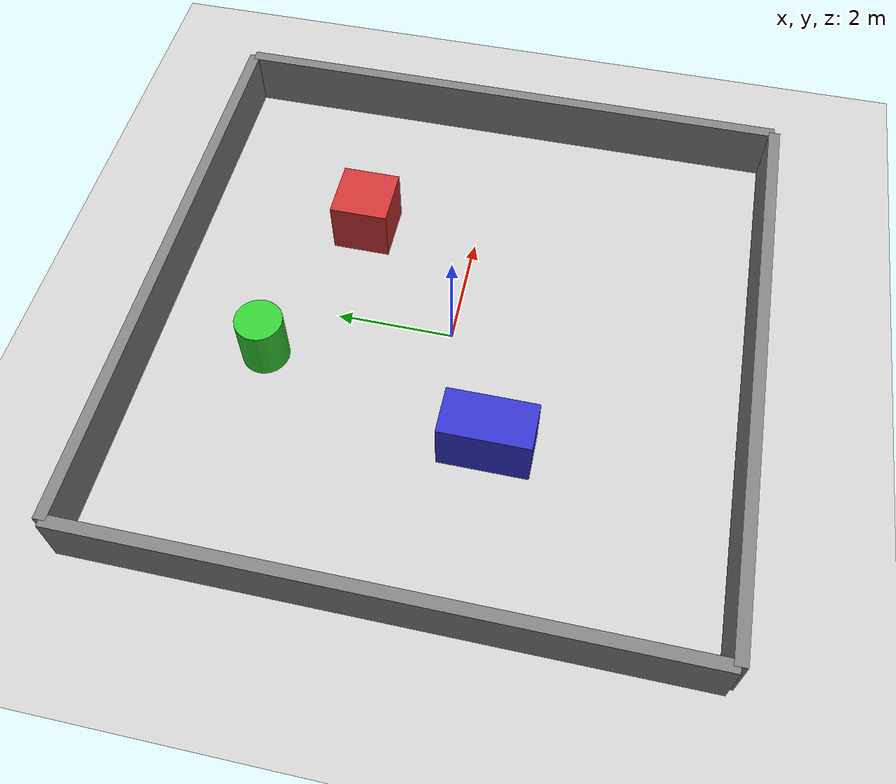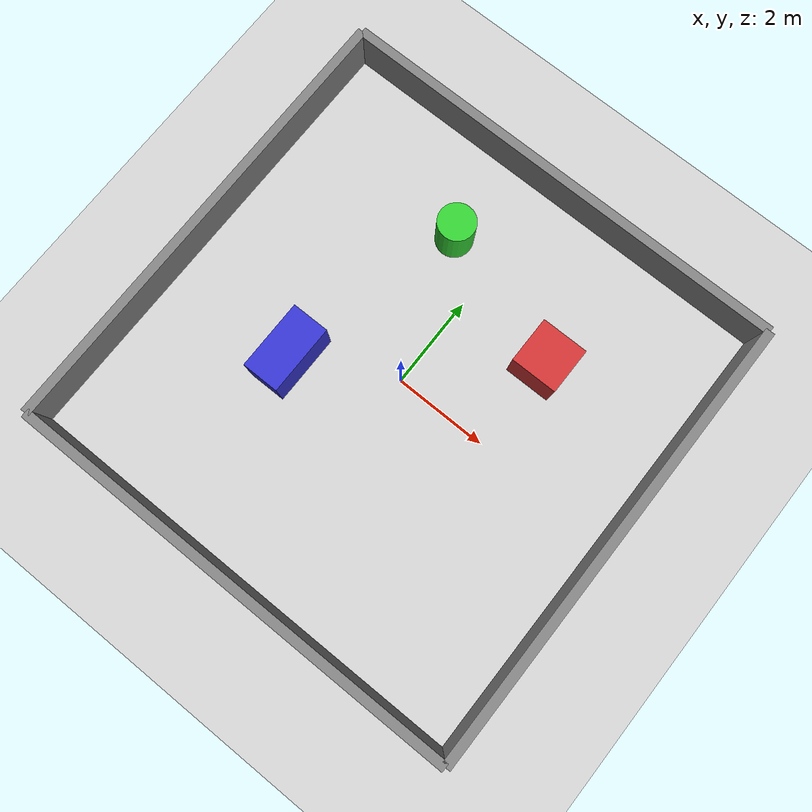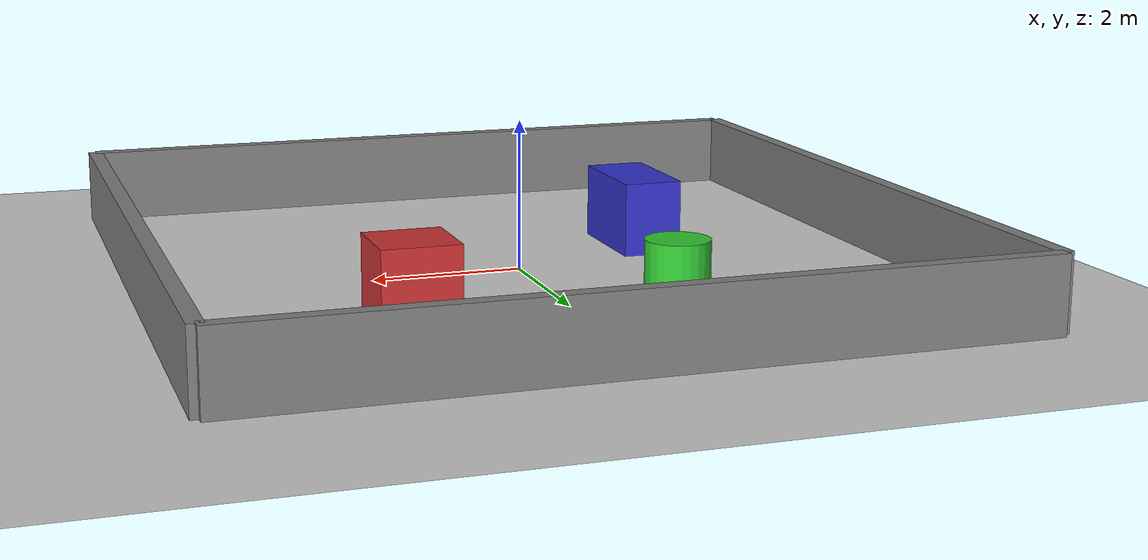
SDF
<?xml version="1.0"?>

<sdf version="1.9">
  <world name="nav_world">

    <physics name="4ms" type="dart">
      <max_step_size>0.004</max_step_size>
      <real_time_factor>1.0</real_time_factor>
    </physics>

    <!-- System plugins -->
    <plugin filename="gz-sim-physics-system" name="gz::sim::systems::Physics"/>
    <plugin filename="gz-sim-user-commands-system" name="gz::sim::systems::UserCommands"/>
    <plugin filename="gz-sim-scene-broadcaster-system" name="gz::sim::systems::SceneBroadcaster"/>
    <plugin filename="gz-sim-contact-system" name="gz::sim::systems::Contact"/>

    <!-- CRITICAL: Sensors system – required for gpu_lidar, imu, camera, etc. -->
    <plugin filename="gz-sim-sensors-system" name="gz::sim::systems::Sensors">
      <render_engine>ogre2</render_engine>
    </plugin>

    <!-- IMU system -->
    <plugin filename="gz-sim-imu-system" name="gz::sim::systems::Imu"/>

    <!-- Lighting -->
    <light type="directional" name="sun">
      <cast_shadows>false</cast_shadows>
      <pose>0 0 10 0 0 0</pose>
      <diffuse>0.8 0.8 0.8 1</diffuse>
      <specular>0.2 0.2 0.2 1</specular>
      <attenuation>
        <range>1000</range>
        <constant>0.9</constant>
        <linear>0.01</linear>
        <quadratic>0.001</quadratic>
      </attenuation>
      <direction>-0.5 0.1 -0.9</direction>
    </light>

    <!-- Ground plane -->
    <model name="ground_plane">
      <static>true</static>
      <link name="link">
        <collision name="collision">
          <geometry>
            <plane>
              <normal>0 0 1</normal>
              <size>100 100</size>
            </plane>
          </geometry>
          <surface>
            <friction>
              <ode>
                <mu>100</mu>
                <mu2>50</mu2>
              </ode>
            </friction>
            <bounce>
              <restitution_coefficient>0.0</restitution_coefficient>
              <threshold>1e6</threshold>
            </bounce>
            <contact>
              <ode>
                <soft_cfm>0</soft_cfm>
                <soft_erp>0.2</soft_erp>
              </ode>
            </contact>
          </surface>
        </collision>
        <visual name="visual">
          <geometry>
            <plane>
              <normal>0 0 1</normal>
              <size>100 100</size>
            </plane>
          </geometry>
          <material>
            <ambient>0.8 0.8 0.8 1</ambient>
            <diffuse>0.8 0.8 0.8 1</diffuse>
            <specular>0.8 0.8 0.8 1</specular>
          </material>
        </visual>
      </link>
    </model>

    <!-- Some walls for the LiDAR to detect (simple obstacle room) -->
    <model name="wall_north">
      <static>true</static>
      <pose>0 5 0.5 0 0 0</pose>
      <link name="link">
        <collision name="collision">
          <geometry><box><size>10 0.2 1</size></box></geometry>
        </collision>
        <visual name="visual">
          <geometry><box><size>10 0.2 1</size></box></geometry>
          <material><ambient>0.5 0.5 0.5 1</ambient><diffuse>0.5 0.5 0.5 1</diffuse></material>
        </visual>
      </link>
    </model>

    <model name="wall_south">
      <static>true</static>
      <pose>0 -5 0.5 0 0 0</pose>
      <link name="link">
        <collision name="collision">
          <geometry><box><size>10 0.2 1</size></box></geometry>
        </collision>
        <visual name="visual">
          <geometry><box><size>10 0.2 1</size></box></geometry>
          <material><ambient>0.5 0.5 0.5 1</ambient><diffuse>0.5 0.5 0.5 1</diffuse></material>
        </visual>
      </link>
    </model>

    <model name="wall_east">
      <static>true</static>
      <pose>5 0 0.5 0 0 0</pose>
      <link name="link">
        <collision name="collision">
          <geometry><box><size>0.2 10 1</size></box></geometry>
        </collision>
        <visual name="visual">
          <geometry><box><size>0.2 10 1</size></box></geometry>
          <material><ambient>0.5 0.5 0.5 1</ambient><diffuse>0.5 0.5 0.5 1</diffuse></material>
        </visual>
      </link>
    </model>

    <model name="wall_west">
      <static>true</static>
      <pose>-5 0 0.5 0 0 0</pose>
      <link name="link">
        <collision name="collision">
          <geometry><box><size>0.2 10 1</size></box></geometry>
        </collision>
        <visual name="visual">
          <geometry><box><size>0.2 10 1</size></box></geometry>
          <material><ambient>0.5 0.5 0.5 1</ambient><diffuse>0.5 0.5 0.5 1</diffuse></material>
        </visual>
      </link>
    </model>

    <!-- A few obstacles inside the room -->
    <model name="box1">
      <static>true</static>
      <pose>2 2 0.5 0 0 0</pose>
      <link name="link">
        <collision name="collision">
          <geometry><box><size>1 1 1</size></box></geometry>
        </collision>
        <visual name="visual">
          <geometry><box><size>1 1 1</size></box></geometry>
          <material><ambient>0.8 0.2 0.2 1</ambient><diffuse>0.8 0.2 0.2 1</diffuse></material>
        </visual>
      </link>
    </model>

    <model name="box2">
      <static>true</static>
      <pose>-2 -1 0.5 0 0 0</pose>
      <link name="link">
        <collision name="collision">
          <geometry><box><size>0.8 1.5 1</size></box></geometry>
        </collision>
        <visual name="visual">
          <geometry><box><size>0.8 1.5 1</size></box></geometry>
          <material><ambient>0.2 0.2 0.8 1</ambient><diffuse>0.2 0.2 0.8 1</diffuse></material>
        </visual>
      </link>
    </model>

    <model name="cylinder1">
      <static>true</static>
      <pose>-1 3 0.5 0 0 0</pose>
      <link name="link">
        <collision name="collision">
          <geometry><cylinder><radius>0.4</radius><length>1</length></cylinder></geometry>
        </collision>
        <visual name="visual">
          <geometry><cylinder><radius>0.4</radius><length>1</length></cylinder></geometry>
          <material><ambient>0.2 0.8 0.2 1</ambient><diffuse>0.2 0.8 0.2 1</diffuse></material>
        </visual>
      </link>
    </model>

  </world>
</sdf>
